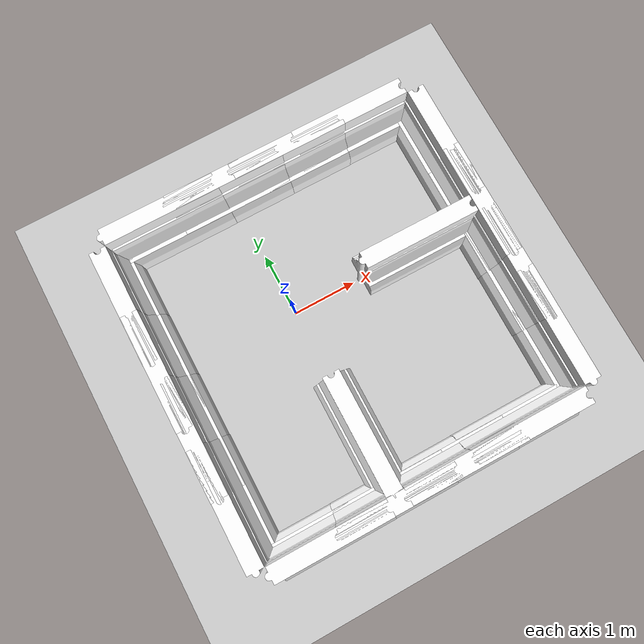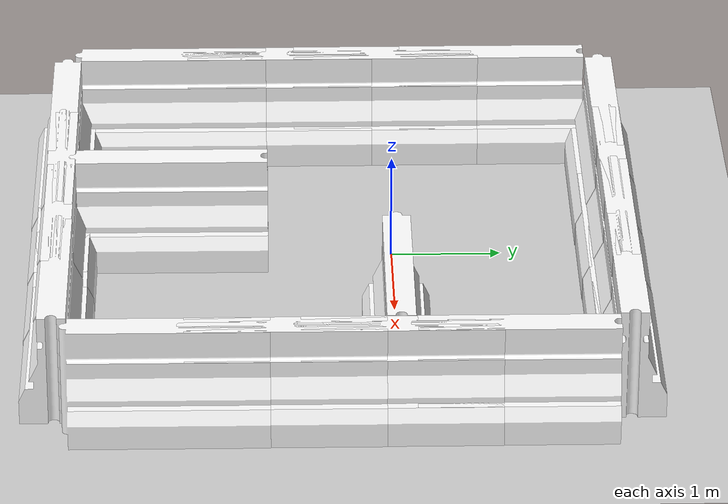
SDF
<sdf version="1.4">
 <world name="default">
  <light name="sun" type="directional">
   <pose>0 0 10 0 -0 0</pose>
   <diffuse>0.8 0.8 0.8 1</diffuse>
   <specular>0.2 0.2 0.2 1</specular>
   <attenuation>
    <range>1000</range>
    <constant>0.9</constant>
    <linear>0.01</linear>
    <quadratic>0.001</quadratic>
   </attenuation>
   <direction>-0.5 0.1 -0.9</direction>
  </light>
  <model name="ground_plane">
   <static>1</static>
   <link name="link">
    <collision name="collision">
     <geometry><plane><normal>0 0 1</normal><size>100 100</size></plane></geometry>
     <surface><friction><ode><mu>100</mu><mu2>50</mu2></ode></friction></surface>
    </collision>
    <visual name="visual">
     <cast_shadows>0</cast_shadows>
     <geometry><plane><normal>0 0 1</normal><size>100 100</size></plane></geometry>
     <material>
      <script><uri>file://media/materials/scripts/gazebo.material</uri><name>Gazebo/Grey</name></script>
     </material>
    </visual>
    <velocity_decay><linear>0</linear><angular>0</angular></velocity_decay>
   </link>
  </model>
  <physics type="ode">
   <max_step_size>0.001</max_step_size>
   <real_time_factor>1</real_time_factor>
   <real_time_update_rate>1000</real_time_update_rate>
   <gravity>0 0 -9.8</gravity>
  </physics>
  <scene><ambient>0.4 0.4 0.4 1</ambient><background>0.7 0.7 0.7 1</background><shadows>1</shadows></scene>
  <spherical_coordinates>
   <surface_model>EARTH_WGS84</surface_model>
   <latitude_deg>0</latitude_deg>
   <longitude_deg>0</longitude_deg>
   <elevation>0</elevation>
   <heading_deg>0</heading_deg>
  </spherical_coordinates>
  <model name="drc_practice_white_jersey_barrier">
   <static>1</static>
   <link name="link">
    <visual name="visual">
     <geometry>
      <mesh><uri>model://drc_practice_white_jersey_barrier/meshes/jersey_barrier.dae</uri></mesh>
     </geometry>
    </visual>
    <collision name="collision">
     <geometry>
      <mesh><uri>model://drc_practice_white_jersey_barrier/meshes/jersey_barrier.dae</uri></mesh>
     </geometry>
    </collision>
    <velocity_decay><linear>0</linear><angular>0</angular></velocity_decay>
   </link>
   <pose>-2 1 0 0 -0 0</pose>
  </model>
  <model name="drc_practice_white_jersey_barrier_0">
   <static>1</static>
   <link name="link">
    <visual name="visual">
     <geometry>
      <mesh><uri>model://drc_practice_white_jersey_barrier/meshes/jersey_barrier.dae</uri></mesh>
     </geometry>
    </visual>
    <collision name="collision">
     <geometry>
      <mesh><uri>model://drc_practice_white_jersey_barrier/meshes/jersey_barrier.dae</uri></mesh>
     </geometry>
    </collision>
    <velocity_decay><linear>0</linear><angular>0</angular></velocity_decay>
   </link>
   <pose>-2 0 0 0 -0 0</pose>
  </model>
  <model name="drc_practice_white_jersey_barrier_1">
   <static>1</static>
   <link name="link">
    <visual name="visual">
     <geometry>
      <mesh><uri>model://drc_practice_white_jersey_barrier/meshes/jersey_barrier.dae</uri></mesh>
     </geometry>
    </visual>
    <collision name="collision">
     <geometry>
      <mesh><uri>model://drc_practice_white_jersey_barrier/meshes/jersey_barrier.dae</uri></mesh>
     </geometry>
    </collision>
    <velocity_decay><linear>0</linear><angular>0</angular></velocity_decay>
   </link>
   <pose>-2 -1 0 0 -0 0</pose>
  </model>
  <model name="drc_practice_white_jersey_barrier_2">
   <static>1</static>
   <link name="link">
    <visual name="visual">
     <geometry>
      <mesh><uri>model://drc_practice_white_jersey_barrier/meshes/jersey_barrier.dae</uri></mesh>
     </geometry>
    </visual>
    <collision name="collision">
     <geometry>
      <mesh><uri>model://drc_practice_white_jersey_barrier/meshes/jersey_barrier.dae</uri></mesh>
     </geometry>
    </collision>
    <velocity_decay><linear>0</linear><angular>0</angular></velocity_decay>
   </link>
   <pose>-2 -2 0 0 -0 0</pose>
  </model>
  <model name="drc_practice_white_jersey_barrier_13">
   <static>1</static>
   <link name="link">
    <visual name="visual">
     <geometry>
      <mesh><uri>model://drc_practice_white_jersey_barrier/meshes/jersey_barrier.dae</uri></mesh>
     </geometry>
    </visual>
    <collision name="collision">
     <geometry>
      <mesh><uri>model://drc_practice_white_jersey_barrier/meshes/jersey_barrier.dae</uri></mesh>
     </geometry>
    </collision>
    <velocity_decay><linear>0</linear><angular>0</angular></velocity_decay>
   </link>
   <pose>-1 -3 0 0 0 -1.5708</pose>
  </model>
  <model name="drc_practice_white_jersey_barrier_14">
   <static>1</static>
   <link name="link">
    <visual name="visual">
     <geometry>
      <mesh><uri>model://drc_practice_white_jersey_barrier/meshes/jersey_barrier.dae</uri></mesh>
     </geometry>
    </visual>
    <collision name="collision">
     <geometry>
      <mesh><uri>model://drc_practice_white_jersey_barrier/meshes/jersey_barrier.dae</uri></mesh>
     </geometry>
    </collision>
    <velocity_decay><linear>0</linear><angular>0</angular></velocity_decay>
   </link>
   <pose>0 -3 0 0 0 -1.5708</pose>
  </model>
  <model name="drc_practice_white_jersey_barrier_15">
   <static>1</static>
   <link name="link">
    <visual name="visual">
     <geometry>
      <mesh><uri>model://drc_practice_white_jersey_barrier/meshes/jersey_barrier.dae</uri></mesh>
     </geometry>
    </visual>
    <collision name="collision">
     <geometry>
      <mesh><uri>model://drc_practice_white_jersey_barrier/meshes/jersey_barrier.dae</uri></mesh>
     </geometry>
    </collision>
    <velocity_decay><linear>0</linear><angular>0</angular></velocity_decay>
   </link>
   <pose>1 -3 0 0 0 -1.5708</pose>
  </model>
  <model name="drc_practice_white_jersey_barrier_16">
   <static>1</static>
   <link name="link">
    <visual name="visual">
     <geometry>
      <mesh><uri>model://drc_practice_white_jersey_barrier/meshes/jersey_barrier.dae</uri></mesh>
     </geometry>
    </visual>
    <collision name="collision">
     <geometry>
      <mesh><uri>model://drc_practice_white_jersey_barrier/meshes/jersey_barrier.dae</uri></mesh>
     </geometry>
    </collision>
    <velocity_decay><linear>0</linear><angular>0</angular></velocity_decay>
   </link>
   <pose>2 -3 0 0 0 -1.5708</pose>
  </model>
  <model name="drc_practice_white_jersey_barrier_17">
   <static>1</static>
   <link name="link">
    <visual name="visual">
     <geometry>
      <mesh><uri>model://drc_practice_white_jersey_barrier/meshes/jersey_barrier.dae</uri></mesh>
     </geometry>
    </visual>
    <collision name="collision">
     <geometry>
      <mesh><uri>model://drc_practice_white_jersey_barrier/meshes/jersey_barrier.dae</uri></mesh>
     </geometry>
    </collision>
    <velocity_decay><linear>0</linear><angular>0</angular></velocity_decay>
   </link>
   <pose>3 -2 0 0 -0 0</pose>
  </model>
  <model name="drc_practice_white_jersey_barrier_20">
   <static>1</static>
   <link name="link">
    <visual name="visual">
     <geometry>
      <mesh><uri>model://drc_practice_white_jersey_barrier/meshes/jersey_barrier.dae</uri></mesh>
     </geometry>
    </visual>
    <collision name="collision">
     <geometry>
      <mesh><uri>model://drc_practice_white_jersey_barrier/meshes/jersey_barrier.dae</uri></mesh>
     </geometry>
    </collision>
    <velocity_decay><linear>0</linear><angular>0</angular></velocity_decay>
   </link>
   <pose>0 -2 0 0 -0 0</pose>
  </model>
  <model name="drc_practice_white_jersey_barrier_21">
   <static>1</static>
   <link name="link">
    <visual name="visual">
     <geometry>
      <mesh><uri>model://drc_practice_white_jersey_barrier/meshes/jersey_barrier.dae</uri></mesh>
     </geometry>
    </visual>
    <collision name="collision">
     <geometry>
      <mesh><uri>model://drc_practice_white_jersey_barrier/meshes/jersey_barrier.dae</uri></mesh>
     </geometry>
    </collision>
    <velocity_decay><linear>0</linear><angular>0</angular></velocity_decay>
   </link>
   <pose>3 -1 0 0 -0 0</pose>
  </model>
  <model name="drc_practice_white_jersey_barrier_22">
   <static>1</static>
   <link name="link">
    <visual name="visual">
     <geometry>
      <mesh><uri>model://drc_practice_white_jersey_barrier/meshes/jersey_barrier.dae</uri></mesh>
     </geometry>
    </visual>
    <collision name="collision">
     <geometry>
      <mesh><uri>model://drc_practice_white_jersey_barrier/meshes/jersey_barrier.dae</uri></mesh>
     </geometry>
    </collision>
    <velocity_decay><linear>0</linear><angular>0</angular></velocity_decay>
   </link>
   <pose>3 0 0 0 -0 0</pose>
  </model>
  <model name="drc_practice_white_jersey_barrier_23">
   <static>1</static>
   <link name="link">
    <visual name="visual">
     <geometry>
      <mesh><uri>model://drc_practice_white_jersey_barrier/meshes/jersey_barrier.dae</uri></mesh>
     </geometry>
    </visual>
    <collision name="collision">
     <geometry>
      <mesh><uri>model://drc_practice_white_jersey_barrier/meshes/jersey_barrier.dae</uri></mesh>
     </geometry>
    </collision>
    <velocity_decay><linear>0</linear><angular>0</angular></velocity_decay>
   </link>
   <pose>3 1 0 0 -0 0</pose>
  </model>
  <model name="drc_practice_white_jersey_barrier_27">
   <static>1</static>
   <link name="link">
    <visual name="visual">
     <geometry>
      <mesh><uri>model://drc_practice_white_jersey_barrier/meshes/jersey_barrier.dae</uri></mesh>
     </geometry>
    </visual>
    <collision name="collision">
     <geometry>
      <mesh><uri>model://drc_practice_white_jersey_barrier/meshes/jersey_barrier.dae</uri></mesh>
     </geometry>
    </collision>
    <velocity_decay><linear>0</linear><angular>0</angular></velocity_decay>
   </link>
   <pose>-1 2 -0 0 0 -1.5708</pose>
  </model>
  <model name="drc_practice_white_jersey_barrier_29">
   <static>1</static>
   <link name="link">
    <visual name="visual">
     <geometry>
      <mesh><uri>model://drc_practice_white_jersey_barrier/meshes/jersey_barrier.dae</uri></mesh>
     </geometry>
    </visual>
    <collision name="collision">
     <geometry>
      <mesh><uri>model://drc_practice_white_jersey_barrier/meshes/jersey_barrier.dae</uri></mesh>
     </geometry>
    </collision>
    <velocity_decay><linear>0</linear><angular>0</angular></velocity_decay>
   </link>
   <pose>0 2 0 0 0 -1.5708</pose>
  </model>
  <model name="drc_practice_white_jersey_barrier_30">
   <static>1</static>
   <link name="link">
    <visual name="visual">
     <geometry>
      <mesh><uri>model://drc_practice_white_jersey_barrier/meshes/jersey_barrier.dae</uri></mesh>
     </geometry>
    </visual>
    <collision name="collision">
     <geometry>
      <mesh><uri>model://drc_practice_white_jersey_barrier/meshes/jersey_barrier.dae</uri></mesh>
     </geometry>
    </collision>
    <velocity_decay><linear>0</linear><angular>0</angular></velocity_decay>
   </link>
   <pose>1 2 0 0 0 -1.5708</pose>
  </model>
  <model name="drc_practice_white_jersey_barrier_31">
   <static>1</static>
   <link name="link">
    <visual name="visual">
     <geometry>
      <mesh><uri>model://drc_practice_white_jersey_barrier/meshes/jersey_barrier.dae</uri></mesh>
     </geometry>
    </visual>
    <collision name="collision">
     <geometry>
      <mesh><uri>model://drc_practice_white_jersey_barrier/meshes/jersey_barrier.dae</uri></mesh>
     </geometry>
    </collision>
    <velocity_decay><linear>0</linear><angular>0</angular></velocity_decay>
   </link>
   <pose>2 2 -0 0 0 -1.5708</pose>
  </model>
  <model name="drc_practice_white_jersey_barrier_3">
   <static>1</static>
   <link name="link">
    <visual name="visual">
     <geometry>
      <mesh><uri>model://drc_practice_white_jersey_barrier/meshes/jersey_barrier.dae</uri></mesh>
     </geometry>
    </visual>
    <collision name="collision">
     <geometry>
      <mesh><uri>model://drc_practice_white_jersey_barrier/meshes/jersey_barrier.dae</uri></mesh>
     </geometry>
    </collision>
    <velocity_decay><linear>0</linear><angular>0</angular></velocity_decay>
   </link>
   <pose>2 0 0 0 0 -1.5708</pose>
  </model>
 </world>
</sdf>
